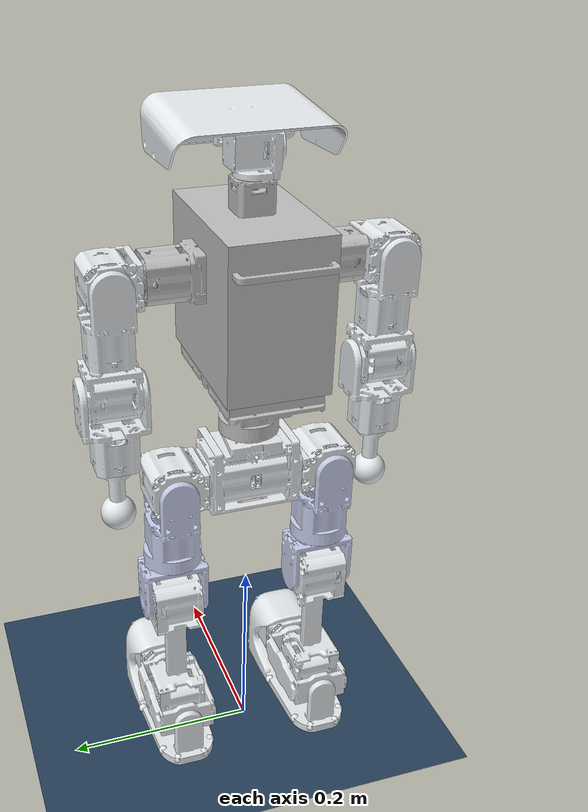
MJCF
<mujoco model="pi_plus_25dof_250820_ori">
  <compiler angle="radian" meshdir="../meshes/"/>
  <default>
    <default class="pi_motor">
      <joint damping="0.05" armature="0.01" frictionloss="0.2" />
    </default>

  </default>

  <asset>
    <mesh name="base_link" file="base_link.STL"/>
    <mesh name="waist_link" file="waist_link.STL"/>
    <mesh name="l_hip_pitch_link" file="l_hip_pitch_link.STL"/>
    <mesh name="l_hip_roll_link" file="l_hip_roll_link.STL"/>
    <mesh name="l_thigh_link" file="l_thigh_link.STL"/>
    <mesh name="l_calf_link" file="l_calf_link.STL"/>
    <mesh name="l_ankle_pitch_link" file="l_ankle_pitch_link.STL"/>
    <mesh name="l_ankle_roll_link" file="l_ankle_roll_link.STL"/>
    <mesh name="r_hip_pitch_link" file="r_hip_pitch_link.STL"/>
    <mesh name="r_hip_roll_link" file="r_hip_roll_link.STL"/>
    <mesh name="r_thigh_link" file="r_thigh_link.STL"/>
    <mesh name="r_calf_link" file="r_calf_link.STL"/>
    <mesh name="r_ankle_pitch_link" file="r_ankle_pitch_link.STL"/>
    <mesh name="r_ankle_roll_link" file="r_ankle_roll_link.STL"/>
    <mesh name="l_shoulder_pitch_link" file="l_shoulder_pitch_link.STL"/>
    <mesh name="l_shoulder_roll_link" file="l_shoulder_roll_link.STL"/>
    <mesh name="l_upper_arm_link" file="l_upper_arm_link.STL"/>
    <mesh name="l_elbow_link" file="l_elbow_link.STL"/>
    <mesh name="l_wrist_link" file="l_wrist_link.STL"/>
    <mesh name="r_shoulder_pitch_link" file="r_shoulder_pitch_link.STL"/>
    <mesh name="r_shoulder_roll_link" file="r_shoulder_roll_link.STL"/>
    <mesh name="r_upper_arm_link" file="r_upper_arm_link.STL"/>
    <mesh name="r_elbow_link" file="r_elbow_link.STL"/>
    <mesh name="r_wrist_link" file="r_wrist_link.STL"/>
    <mesh name="head_yaw_link" file="head_yaw_link.STL"/>
    <mesh name="head_pitch_link" file="head_pitch_link.STL"/>
  </asset>

  <worldbody>
    <body name="base_link" pos="0 0 0.40">
      <site name="imu" size="0.01" pos="-0.0 -0.0 0.0" />

      <inertial pos="0.0033918 0.000229773 0.140713" quat="0.999674 -0.00150691 0.0253958 -0.00204895" mass="2.69295" diaginertia="0.0240249 0.021457 0.00759371"/>
      <joint name="floating_base_joint" type="free" limited="false" actuatorfrclimited="false" class="pi_motor"/>
      <geom type="mesh" contype="0" conaffinity="0" group="1" density="0" rgba="0.75294 0.75294 0.75294 1" mesh="base_link"/>
      <geom size="0.0825 0.05 0.075" pos="0 0 0.13" type="box" rgba="0.75294 0.75294 0.75294 1"/>
      <geom pos="0 -0.00025 0.236" quat="1 0 0 0" type="mesh" contype="0" conaffinity="0" group="1" density="0" rgba="0.89804 0.91765 0.92941 1" mesh="head_yaw_link"/>
      <geom pos="0 -0.00025 0.236" quat="1 0 0 0" type="mesh" rgba="0.89804 0.91765 0.92941 1" mesh="head_yaw_link"/>
      <geom pos="0 0.00025 0.2615" quat="1 0 0 0" type="mesh" contype="0" conaffinity="0" group="1" density="0" rgba="0.89804 0.91765 0.92941 1" mesh="head_pitch_link"/>
      <geom pos="0 0.00025 0.2615" quat="1 0 0 0" type="mesh" rgba="0.89804 0.91765 0.92941 1" mesh="head_pitch_link"/>

      <body name="l_shoulder_pitch_link" pos="0 0.1069 0.1549">
        <inertial pos="0.0021508 0.0256369 -0.0002145" quat="0.599936 0.397957 -0.582743 0.376985" mass="0.258581" diaginertia="9.64158e-05 8.57416e-05 7.97426e-05"/>
        <joint name="l_shoulder_pitch_joint" pos="0 0 0" axis="0 1 0" range="-2.61 2.61" actuatorfrcrange="-9 9" class="pi_motor"/>
        <geom type="mesh" contype="0" conaffinity="0" group="1" density="0" rgba="0.89804 0.91765 0.92941 1" mesh="l_shoulder_pitch_link"/>
        <geom type="mesh" rgba="0.89804 0.91765 0.92941 1" mesh="l_shoulder_pitch_link"/>
        <body name="l_shoulder_roll_link" pos="0 0.029 0">
          <inertial pos="0.0002739 0.0001877 -0.0460977" quat="0.707699 0.00350528 -0.00201726 0.706503" mass="0.295598" diaginertia="0.00028311 0.0002252 0.00012949"/>
          <joint name="l_shoulder_roll_joint" pos="0 0 0" axis="1 0 0" range="-0.36 3.4" actuatorfrcrange="-9 9" class="pi_motor"/>
          <geom type="mesh" contype="0" conaffinity="0" group="1" density="0" rgba="0.89804 0.91765 0.92941 1" mesh="l_shoulder_roll_link"/>
          <geom type="mesh" rgba="0.89804 0.91765 0.92941 1" mesh="l_shoulder_roll_link"/>
          <body name="l_upper_arm_link" pos="0 0 -0.0814">
            <inertial pos="0.0002145 0.0020712 -0.0256369" quat="0.972893 0.231162 0.00276487 -0.00601627" mass="0.258581" diaginertia="9.65019e-05 8.61583e-05 7.94398e-05"/>
            <joint name="l_upper_arm_joint" pos="0 0 0" axis="0 0 1" range="-2.61 2.61" actuatorfrcrange="-9 9" class="pi_motor"/>
            <geom type="mesh" contype="0" conaffinity="0" group="1" density="0" rgba="0.89804 0.91765 0.92941 1" mesh="l_upper_arm_link"/>
            <geom type="mesh" rgba="0.89804 0.91765 0.92941 1" mesh="l_upper_arm_link"/>
            <body name="l_elbow_link" pos="0 0 -0.029">
              <inertial pos="-0.000118867 0.00024014 -0.0592622" quat="0.999999 -0.00142207 0.000365765 3.39521e-05" mass="0.380103" diaginertia="0.000549735 0.000491832 0.000137205"/>
              <joint name="l_elbow_joint" pos="0 0 0" axis="0 1 0" range="-1.91 1.91" actuatorfrcrange="-9 9" class="pi_motor"/>
              <geom type="mesh" contype="0" conaffinity="0" group="1" density="0" rgba="0.89804 0.91765 0.92941 1" mesh="l_elbow_link"/>
              <geom type="mesh" rgba="0.89804 0.91765 0.92941 1" mesh="l_elbow_link"/>
              <geom pos="0 0 -0.0814" quat="1 0 0 0" type="mesh" contype="0" conaffinity="0" group="1" density="0" rgba="0.89804 0.91765 0.92941 1" mesh="l_wrist_link"/>
              <geom pos="0 0 -0.0814" quat="1 0 0 0" type="mesh" rgba="0.89804 0.91765 0.92941 1" mesh="l_wrist_link"/>
            </body>
          </body>
        </body>
      </body>
      <body name="r_shoulder_pitch_link" pos="0 -0.1069 0.1549">
        <inertial pos="0.0021508 -0.0256369 0.0001349" quat="0.489689 0.506563 -0.489395 0.513899" mass="0.258581" diaginertia="9.64045e-05 8.48905e-05 3.16131e-05"/>
        <joint name="r_shoulder_pitch_joint" pos="0 0 0" axis="0 1 0" range="-2.61 2.61" actuatorfrcrange="-9 9" class="pi_motor"/>
        <geom type="mesh" contype="0" conaffinity="0" group="1" density="0" rgba="0.89804 0.91765 0.92941 1" mesh="r_shoulder_pitch_link"/>
        <geom type="mesh" rgba="0.89804 0.91765 0.92941 1" mesh="r_shoulder_pitch_link"/>
        <body name="r_shoulder_roll_link" pos="0 -0.029 0">
          <inertial pos="0.0002739 0.0001179 -0.0460977" quat="0.705878 0.00188564 -0.000416725 0.708331" mass="0.295598" diaginertia="0.000283102 0.0002252 0.000129498"/>
          <joint name="r_shoulder_roll_joint" pos="0 0 0" axis="1 0 0" range="-3.4 0.36" actuatorfrcrange="-9 9" class="pi_motor"/>
          <geom type="mesh" contype="0" conaffinity="0" group="1" density="0" rgba="0.89804 0.91765 0.92941 1" mesh="r_shoulder_roll_link"/>
          <geom type="mesh" rgba="0.89804 0.91765 0.92941 1" mesh="r_shoulder_roll_link"/>
          <body name="r_upper_arm_link" pos="0 0 -0.0814">
            <inertial pos="-0.0001349 0.0020712 -0.0256369" quat="0.972613 -0.231621 0.0163583 -0.0104347" mass="0.258581" diaginertia="9.65247e-05 8.61584e-05 7.9417e-05"/>
            <joint name="r_upper_arm_joint" pos="0 0 0" axis="0 0 1" range="-2.61 2.61" actuatorfrcrange="-9 9" class="pi_motor"/>
            <geom type="mesh" contype="0" conaffinity="0" group="1" density="0" rgba="0.89804 0.91765 0.92941 1" mesh="r_upper_arm_link"/>
            <geom type="mesh" rgba="0.89804 0.91765 0.92941 1" mesh="r_upper_arm_link"/>
            <body name="r_elbow_link" pos="0 0 -0.029">
              <inertial pos="0.000118867 -0.00024014 -0.0592622" quat="0.999997 0.00142145 -0.000367491 0.00172496" mass="0.380103" diaginertia="0.000549735 0.000491832 0.000137205"/>
              <joint name="r_elbow_joint" pos="0 0 0" axis="0 1 0" range="-1.91 1.91" actuatorfrcrange="-9 9" class="pi_motor"/>
              <geom type="mesh" contype="0" conaffinity="0" group="1" density="0" rgba="0.89804 0.91765 0.92941 1" mesh="r_elbow_link"/>
              <geom type="mesh" rgba="0.89804 0.91765 0.92941 1" mesh="r_elbow_link"/>
              <geom pos="0 0 -0.0814" type="mesh" contype="0" conaffinity="0" group="1" density="0" rgba="0.89804 0.91765 0.92941 1" mesh="r_wrist_link"/>
              <geom pos="0 0 -0.0814" type="mesh" rgba="0.89804 0.91765 0.92941 1" mesh="r_wrist_link"/>
            </body>
          </body>
        </body>
      </body>
      <body name="waist_link" pos="0 0 -0.0208">
        <inertial pos="-0.0002057 0 -0.0388001" quat="0.706991 0.706843 -0.0183512 0.0141014" mass="0.88635" diaginertia="0.0010566 0.00092352 0.000407677"/>
        <joint name="waist_joint" pos="0 0 0" axis="0 0 1" range="-1.57 1.57" actuatorfrcrange="-14.4 14.4" class="pi_motor"/>
        <geom type="mesh" contype="0" conaffinity="0" group="1" density="0" rgba="0.89804 0.91765 0.92941 1" mesh="waist_link"/>
        <geom type="mesh" rgba="0.89804 0.91765 0.92941 1" mesh="waist_link"/>
        <body name="l_hip_pitch_link" pos="0 0.0489 -0.0435">
          <inertial pos="0.0012172 0.0292722 0.0002663" quat="0.550776 0.447675 -0.561529 0.425344" mass="0.399388" diaginertia="0.000124732 0.000104589 9.76791e-05"/>
          <joint name="l_hip_pitch_joint" pos="0 0 0" axis="0 1 0" range="-3.13 2.95" actuatorfrcrange="-14.4 14.4" class="pi_motor"/>
          <geom type="mesh" contype="0" conaffinity="0" group="1" density="0" rgba="0.89804 0.91765 0.92941 1" mesh="l_hip_pitch_link"/>
          <geom type="mesh" rgba="0.89804 0.91765 0.92941 1" mesh="l_hip_pitch_link"/>
          <body name="l_hip_roll_link" pos="0 0.0326 0">
            <inertial pos="0.0007793 0.0001363 -0.06136" quat="0.704755 0.0299981 0.0282991 0.708251" mass="0.4863" diaginertia="0.000570404 0.000478234 0.000222462"/>
            <joint name="l_hip_roll_joint" pos="0 0 0" axis="1 0 0" range="-0.31 3.14" actuatorfrcrange="-14.4 14.4" class="pi_motor"/>
            <geom type="mesh" contype="0" conaffinity="0" group="1" density="0" rgba="0.79216 0.81961 0.93333 1" mesh="l_hip_roll_link"/>
            <geom type="mesh" rgba="0.79216 0.81961 0.93333 1" mesh="l_hip_roll_link"/>
            <body name="l_thigh_link" pos="-0.00035 0 -0.10249">
              <inertial pos="0 -0.0014288 -0.017897" quat="0.680525 0.732725 0 0" mass="0.10996" diaginertia="0.0001209 9.22997e-05 5.56003e-05"/>
              <joint name="l_thigh_joint" pos="0 0 0" axis="0 0 1" range="-2.88 2.88" actuatorfrcrange="-14.4 14.4" class="pi_motor"/>
              <geom type="mesh" contype="0" conaffinity="0" group="1" density="0" rgba="0.79216 0.81961 0.93333 1" mesh="l_thigh_link"/>
              <geom type="mesh" rgba="0.79216 0.81961 0.93333 1" mesh="l_thigh_link"/>
              <body name="l_calf_link" pos="0 0 -0.039912">
                <inertial pos="-1.36e-05 0.0027531 -0.07" quat="0.999998 0 0.00209978 0" mass="0.803183" diaginertia="0.00373206 0.0037196 0.000184037"/>
                <joint name="l_calf_joint" pos="0 0 0" axis="0 1 0" range="-2.49 2.49" actuatorfrcrange="-14.4 14.4" class="pi_motor"/>
                <geom type="mesh" contype="0" conaffinity="0" group="1" density="0" rgba="0.89804 0.91765 0.92941 1" mesh="l_calf_link"/>
                <geom type="mesh" rgba="0.89804 0.91765 0.92941 1" mesh="l_calf_link"/>
                <body name="l_ankle_pitch_link" pos="0 0 -0.14">
                  <inertial pos="0.0069349 -0.0009173 1.5304e-05" quat="-0.00519324 0.706854 0.00520229 0.707321" mass="0.15648" diaginertia="0.0002664 0.000183115 0.000115085"/>
                  <joint name="l_ankle_pitch_joint" pos="0 0 0" axis="0 1 0" range="-0.97 0.92" actuatorfrcrange="-14.4 14.4" class="pi_motor"/>
                  <geom type="mesh" contype="0" conaffinity="0" group="1" density="0" rgba="0.89804 0.91765 0.92941 1" mesh="l_ankle_pitch_link"/>
                  <geom type="mesh" rgba="0.89804 0.91765 0.92941 1" mesh="l_ankle_pitch_link"/>
                  <body name="l_ankle_roll_link" pos="0.051 0 0">
                    <inertial pos="0.0040054 0.0001778 -0.012947" quat="0.565106 0.424083 0.426071 0.565042" mass="0.615015" diaginertia="0.00139221 0.00128638 0.000370719"/>
                    <joint name="l_ankle_roll_joint" pos="0 0 0" axis="1 0 0" range="-0.78 0.78" actuatorfrcrange="-14.4 14.4" class="pi_motor"/>
                    <geom type="mesh" contype="0" conaffinity="0" group="1" density="0" rgba="0.89804 0.91765 0.92941 1" mesh="l_ankle_roll_link"/>
                    <geom size="0.005" pos="0.055 0 -0.043" rgba="0.89804 0.91765 0.92941 1"/>
                    <geom size="0.005" pos="0.052 0.03 -0.043" rgba="0.89804 0.91765 0.92941 1"/>
                    <geom size="0.005" pos="0.052 -0.03 -0.043" rgba="0.89804 0.91765 0.92941 1"/>
                    <geom size="0.005" pos="-0.02 -0.032 -0.043" rgba="0.89804 0.91765 0.92941 1"/>
                    <geom size="0.005" pos="-0.02 0.032 -0.043" rgba="0.89804 0.91765 0.92941 1"/>
                    <geom size="0.005" pos="-0.09 0.027 -0.043" rgba="0.89804 0.91765 0.92941 1"/>
                    <geom size="0.005" pos="-0.09 -0.027 -0.043" rgba="0.89804 0.91765 0.92941 1"/>
                    <geom size="0.005" pos="-0.107 -0.015 -0.043" rgba="0.89804 0.91765 0.92941 1"/>
                    <geom size="0.005" pos="-0.107 0.015 -0.043" rgba="0.89804 0.91765 0.92941 1"/>
                    <geom size="0.02 0.025 0.025" pos="0.035 0 0" type="box" rgba="0.89804 0.91765 0.92941 1"/>
                  </body>
                </body>
              </body>
            </body>
          </body>
        </body>
        <body name="r_hip_pitch_link" pos="0 -0.0494 -0.0435">
          <inertial pos="0.0013058 -0.0293131 0.0002663" quat="0.450847 0.546648 -0.454702 0.539591" mass="0.399388" diaginertia="0.000125904 0.000105756 9.78405e-05"/>
          <joint name="r_hip_pitch_joint" pos="0 0 0" axis="0 1 0" range="-3.13 2.95" actuatorfrcrange="-14.4 14.4"  class="pi_motor"/>
          <geom type="mesh" contype="0" conaffinity="0" group="1" density="0" rgba="0.89804 0.91765 0.92941 1" mesh="r_hip_pitch_link"/>
          <geom type="mesh" rgba="0.89804 0.91765 0.92941 1" mesh="r_hip_pitch_link"/>
          <body name="r_hip_roll_link" pos="0 -0.0321 0">
            <inertial pos="0.0008711 5.42e-05 -0.0613599" quat="0.704743 0.0284395 0.0293915 0.708282" mass="0.4863" diaginertia="0.000570703 0.000478203 0.000222794"/>
            <joint name="r_hip_roll_joint" pos="0 0 0" axis="1 0 0" range="-3.14 0.31" actuatorfrcrange="-14.4 14.4"  class="pi_motor"/>
            <geom type="mesh" contype="0" conaffinity="0" group="1" density="0" rgba="0.79216 0.81961 0.93333 1" mesh="r_hip_roll_link"/>
            <geom type="mesh" rgba="0.79216 0.81961 0.93333 1" mesh="r_hip_roll_link"/>
            <body name="r_thigh_link" pos="-0.00025 0 -0.10279">
              <inertial pos="0 0.0014288 -0.017897" quat="0.732725 0.680525 0 0" mass="0.10996" diaginertia="0.0001209 9.22997e-05 5.56003e-05"/>
              <joint name="r_thigh_joint" pos="0 0 0" axis="0 0 1" range="-2.88 2.88" actuatorfrcrange="-14.4 14.4"  class="pi_motor"/>
              <geom type="mesh" contype="0" conaffinity="0" group="1" density="0" rgba="0.79216 0.81961 0.93333 1" mesh="r_thigh_link"/>
              <geom type="mesh" rgba="0.79216 0.81961 0.93333 1" mesh="r_thigh_link"/>
              <body name="r_calf_link" pos="0 0 -0.039912">
                <inertial pos="-1.36e-05 -0.0027531 -0.07" quat="0.999998 0 -0.00209978 0" mass="0.803183" diaginertia="0.00373206 0.0037196 0.000184037"/>
                <joint name="r_calf_joint" pos="0 0 0" axis="0 1 0" range="-2.49 2.49" actuatorfrcrange="-14.4 14.4" class="pi_motor"/>
                <geom type="mesh" contype="0" conaffinity="0" group="1" density="0" rgba="0.89804 0.91765 0.92941 1" mesh="r_calf_link"/>
                <geom type="mesh" rgba="0.89804 0.91765 0.92941 1" mesh="r_calf_link"/>
                <body name="r_ankle_pitch_link" pos="0 0 -0.14">
                  <inertial pos="0.0069349 0.0059217 -1.5304e-05" quat="0.00520229 0.707321 -0.00519324 0.706854" mass="0.15648" diaginertia="0.0002664 0.000183115 0.000115085"/>
                  <joint name="r_ankle_pitch_joint" pos="0 0 0" axis="0 1 0" range="-0.97 0.92" actuatorfrcrange="-14.4 14.4" class="pi_motor"/>
                  <geom type="mesh" contype="0" conaffinity="0" group="1" density="0" rgba="0.89804 0.91765 0.92941 1" mesh="r_ankle_pitch_link"/>
                  <geom type="mesh" rgba="0.89804 0.91765 0.92941 1" mesh="r_ankle_pitch_link"/>
                  <body name="r_ankle_roll_link" pos="0.051 0.0050044 0">
                    <inertial pos="0.0040054 0.0001778 -0.012947" quat="0.565106 0.424083 0.426071 0.565042" mass="0.615015" diaginertia="0.00139221 0.00128638 0.000370719"/>
                    <joint name="r_ankle_roll_joint" pos="0 0 0" axis="1 0 0" range="-0.78 0.78" actuatorfrcrange="-14.4 14.4" class="pi_motor"/>
                    <geom type="mesh" contype="0" conaffinity="0" group="1" density="0" rgba="0.89804 0.91765 0.92941 1" mesh="r_ankle_roll_link"/>
                    <geom size="0.005" pos="0.055 0 -0.043" rgba="0.89804 0.91765 0.92941 1"/>
                    <geom size="0.005" pos="0.052 0.03 -0.043" rgba="0.89804 0.91765 0.92941 1"/>
                    <geom size="0.005" pos="0.052 -0.03 -0.043" rgba="0.89804 0.91765 0.92941 1"/>
                    <geom size="0.005" pos="-0.02 -0.032 -0.043" rgba="0.89804 0.91765 0.92941 1"/>
                    <geom size="0.005" pos="-0.02 0.032 -0.043" rgba="0.89804 0.91765 0.92941 1"/>
                    <geom size="0.005" pos="-0.09 0.027 -0.043" rgba="0.89804 0.91765 0.92941 1"/>
                    <geom size="0.005" pos="-0.09 -0.027 -0.043" rgba="0.89804 0.91765 0.92941 1"/>
                    <geom size="0.005" pos="-0.107 -0.015 -0.043" rgba="0.89804 0.91765 0.92941 1"/>
                    <geom size="0.005" pos="-0.107 0.015 -0.043" rgba="0.89804 0.91765 0.92941 1"/>
                    <geom size="0.02 0.025 0.025" pos="0.035 0 0" type="box" rgba="0.89804 0.91765 0.92941 1"/>
                  </body>
                </body>
              </body>
            </body>
          </body>
        </body>
      </body>
    </body>
  </worldbody>
   <actuator>
      <motor name="l_shoulder_pitch_joint" joint="l_shoulder_pitch_joint" gear="1" ctrllimited="true" ctrlrange="-20 20" />
      <motor name="l_shoulder_roll_joint" joint="l_shoulder_roll_joint" gear="1" ctrllimited="true" ctrlrange="-20 20" />
      <motor name="l_upper_arm_joint" joint="l_upper_arm_joint" gear="1" ctrllimited="true" ctrlrange="-20 20" />
      <motor name="l_elbow_joint" joint="l_elbow_joint" gear="1" ctrllimited="true" ctrlrange="-20 20" />
      <motor name="r_shoulder_pitch_joint" joint="r_shoulder_pitch_joint" gear="1" ctrllimited="true" ctrlrange="-20 20" />
      <motor name="r_shoulder_roll_joint" joint="r_shoulder_roll_joint" gear="1" ctrllimited="true" ctrlrange="-20 20" />
      <motor name="r_upper_arm_joint" joint="r_upper_arm_joint" gear="1" ctrllimited="true" ctrlrange="-20 20" />
      <motor name="r_elbow_joint" joint="r_elbow_joint" gear="1" ctrllimited="true" ctrlrange="-20 20" />
      <motor name="waist_joint" joint="waist_joint" gear="1" ctrllimited="true" ctrlrange="-20 20" />

      <motor name="l_hip_pitch_joint" joint="l_hip_pitch_joint" gear="1" ctrllimited="true" ctrlrange="-20 20" />
      <motor name="l_hip_roll_joint" joint="l_hip_roll_joint" gear="1" ctrllimited="true" ctrlrange="-20 20" />
      <motor name="l_thigh_joint" joint="l_thigh_joint" gear="1" ctrllimited="true" ctrlrange="-20 20" />
      <motor name="l_calf_joint" joint="l_calf_joint" gear="1" ctrllimited="true" ctrlrange="-20 20" />
      <motor name="l_ankle_pitch_joint" joint="l_ankle_pitch_joint" gear="1" ctrllimited="true" ctrlrange="-20 20" />
      <motor name="l_ankle_roll_joint" joint="l_ankle_roll_joint" gear="1" ctrllimited="true" ctrlrange="-20 20" />

      <motor name="r_hip_pitch_joint" joint="r_hip_pitch_joint" gear="1" ctrllimited="true" ctrlrange="-20 20" />
      <motor name="r_hip_roll_joint" joint="r_hip_roll_joint" gear="1" ctrllimited="true" ctrlrange="-20 20" />
      <motor name="r_thigh_joint" joint="r_thigh_joint" gear="1" ctrllimited="true" ctrlrange="-20 20" />
      <motor name="r_calf_joint" joint="r_calf_joint" gear="1" ctrllimited="true" ctrlrange="-20 20" />
      <motor name="r_ankle_pitch_joint" joint="r_ankle_pitch_joint" gear="1" ctrllimited="true" ctrlrange="-20 20" />
      <motor name="r_ankle_roll_joint" joint="r_ankle_roll_joint" gear="1" ctrllimited="true" ctrlrange="-20 20" />

   </actuator>
   <sensor>
   <!-- Position sensors -->
    <actuatorpos name="l_shoulder_pitch_joint_p" actuator="l_shoulder_pitch_joint" user="13"/>
    <actuatorpos name="l_shoulder_roll_joint_p" actuator="l_shoulder_roll_joint" user="13"/>
    <actuatorpos name="l_upper_arm_joint_p" actuator="l_upper_arm_joint" user="13"/>
    <actuatorpos name="l_elbow_joint_p" actuator="l_elbow_joint" user="13"/>
    <actuatorpos name="r_shoulder_pitch_joint_p" actuator="r_shoulder_pitch_joint" user="13"/>
    <actuatorpos name="r_shoulder_roll_joint_p" actuator="r_shoulder_roll_joint" user="13"/>
    <actuatorpos name="r_upper_arm_joint_p" actuator="r_upper_arm_joint" user="13"/>
    <actuatorpos name="r_elbow_joint_p" actuator="r_elbow_joint" user="13"/>
    <actuatorpos name="waist_joint_p" actuator="waist_joint" user="13"/>
    <actuatorpos name="l_hip_pitch_joint_p" actuator="l_hip_pitch_joint" user="13"/>
    <actuatorpos name="l_hip_roll_joint_p" actuator="l_hip_roll_joint" user="13"/>
    <actuatorpos name="l_thigh_joint_p" actuator="l_thigh_joint" user="13"/>
    <actuatorpos name="l_calf_joint_p" actuator="l_calf_joint" user="13"/>
    <actuatorpos name="l_ankle_pitch_joint_p" actuator="l_ankle_pitch_joint" user="13"/>
    <actuatorpos name="l_ankle_roll_joint_p" actuator="l_ankle_roll_joint" user="13"/>

    <actuatorpos name="r_hip_pitch_joint_p" actuator="r_hip_pitch_joint" user="13"/>
    <actuatorpos name="r_hip_roll_joint_p" actuator="r_hip_roll_joint" user="13"/>
    <actuatorpos name="r_thigh_joint_p" actuator="r_thigh_joint" user="13"/>
    <actuatorpos name="r_calf_joint_p" actuator="r_calf_joint" user="13"/>
    <actuatorpos name="r_ankle_pitch_joint_p" actuator="r_ankle_pitch_joint" user="13"/>
    <actuatorpos name="r_ankle_roll_joint_p" actuator="r_ankle_roll_joint" user="13"/>

    <!-- Velocity sensors -->
    <actuatorvel name="l_shoulder_pitch_joint_v" actuator="l_shoulder_pitch_joint" user="13" noise="1e-3"/>
    <actuatorvel name="l_shoulder_roll_joint_v" actuator="l_shoulder_roll_joint" user="13" noise="1e-3"/>
    <actuatorvel name="l_upper_arm_joint_v" actuator="l_upper_arm_joint" user="13" noise="1e-3"/>
    <actuatorvel name="l_elbow_joint_v" actuator="l_elbow_joint" user="13" noise="1e-3"/>
    <actuatorvel name="r_shoulder_pitch_joint_v" actuator="r_shoulder_pitch_joint" user="13" noise="1e-3"/>
    <actuatorvel name="r_shoulder_roll_joint_v" actuator="r_shoulder_roll_joint" user="13" noise="1e-3"/>
    <actuatorvel name="r_upper_arm_joint_v" actuator="r_upper_arm_joint" user="13" noise="1e-3"/>
    <actuatorvel name="r_elbow_joint_v" actuator="r_elbow_joint" user="13" noise="1e-3"/>
    <actuatorvel name="waist_joint_v" actuator="waist_joint" user="13" noise="1e-3"/>
    <actuatorvel name="l_hip_pitch_joint_v" actuator="l_hip_pitch_joint" user="13" noise="1e-3"/>
    <actuatorvel name="l_hip_roll_joint_v" actuator="l_hip_roll_joint" user="13" noise="1e-3"/>
    <actuatorvel name="l_thigh_joint_v" actuator="l_thigh_joint" user="13" noise="1e-3"/>
    <actuatorvel name="l_calf_joint_v" actuator="l_calf_joint" user="13" noise="1e-3"/>
    <actuatorvel name="l_ankle_pitch_joint_v" actuator="l_ankle_pitch_joint" user="13" noise="1e-3"/>
    <actuatorvel name="l_ankle_roll_joint_v" actuator="l_ankle_roll_joint" user="13" noise="1e-3"/>

    <actuatorvel name="r_hip_pitch_joint_v" actuator="r_hip_pitch_joint" user="13" noise="1e-3"/>
    <actuatorvel name="r_hip_roll_joint_v" actuator="r_hip_roll_joint" user="13" noise="1e-3"/>
    <actuatorvel name="r_thigh_joint_v" actuator="r_thigh_joint" user="13" noise="1e-3"/>
    <actuatorvel name="r_calf_joint_v" actuator="r_calf_joint" user="13" noise="1e-3"/>
    <actuatorvel name="r_ankle_pitch_joint_v" actuator="r_ankle_pitch_joint" user="13" noise="1e-3"/>
    <actuatorvel name="r_ankle_roll_joint_v" actuator="r_ankle_roll_joint" user="13" noise="1e-3"/>

    <!-- Force sensors -->
    <actuatorfrc name="l_shoulder_pitch_joint_f" actuator="l_shoulder_pitch_joint" user="13" noise="1e-3"/>
    <actuatorfrc name="l_shoulder_roll_joint_f" actuator="l_shoulder_roll_joint" user="13" noise="1e-3"/>
    <actuatorfrc name="l_upper_arm_joint_f" actuator="l_upper_arm_joint" user="13" noise="1e-3"/>
    <actuatorfrc name="l_elbow_joint_f" actuator="l_elbow_joint" user="13" noise="1e-3"/>
    <actuatorfrc name="r_shoulder_pitch_joint_f" actuator="r_shoulder_pitch_joint" user="13" noise="1e-3"/>
    <actuatorfrc name="r_shoulder_roll_joint_f" actuator="r_shoulder_roll_joint" user="13" noise="1e-3"/>
    <actuatorfrc name="r_upper_arm_joint_f" actuator="r_upper_arm_joint" user="13" noise="1e-3"/>
    <actuatorfrc name="r_elbow_joint_f" actuator="r_elbow_joint" user="13" noise="1e-3"/>
    <actuatorfrc name="waist_joint_f" actuator="waist_joint" user="13" noise="1e-3"/>
    <actuatorfrc name="l_hip_pitch_joint_f" actuator="l_hip_pitch_joint" user="13" noise="1e-3"/>
    <actuatorfrc name="l_hip_roll_joint_f" actuator="l_hip_roll_joint" user="13" noise="1e-3"/>
    <actuatorfrc name="l_thigh_joint_f" actuator="l_thigh_joint" user="13" noise="1e-3"/>
    <actuatorfrc name="l_calf_joint_f" actuator="l_calf_joint" user="13" noise="1e-3"/>
    <actuatorfrc name="l_ankle_pitch_joint_f" actuator="l_ankle_pitch_joint" user="13" noise="1e-3"/>
    <actuatorfrc name="l_ankle_roll_joint_f" actuator="l_ankle_roll_joint" user="13" noise="1e-3"/>

    <actuatorfrc name="r_hip_pitch_joint_f" actuator="r_hip_pitch_joint" user="13" noise="1e-3"/>
    <actuatorfrc name="r_hip_roll_joint_f" actuator="r_hip_roll_joint" user="13" noise="1e-3"/>
    <actuatorfrc name="r_thigh_joint_f" actuator="r_thigh_joint" user="13" noise="1e-3"/>
    <actuatorfrc name="r_calf_joint_f" actuator="r_calf_joint" user="13" noise="1e-3"/>
    <actuatorfrc name="r_ankle_pitch_joint_f" actuator="r_ankle_pitch_joint" user="13" noise="1e-3"/>
    <actuatorfrc name="r_ankle_roll_joint_f" actuator="r_ankle_roll_joint" user="13" noise="1e-3"/>

    <framequat name='orientation' objtype='site' noise='0.001' objname='imu'/>
    <framepos name='position' objtype='site' noise='0.001' objname='imu'/>
    <gyro name='angular-velocity' site='imu' noise='0.005' cutoff='34.9'/>
    <velocimeter name='linear-velocity' site='imu' noise='0.001' cutoff='30'/>
    <accelerometer name='linear-acceleration' site='imu' noise='0.005' cutoff='157'/>
    <magnetometer name='magnetometer' site='imu'/>

  </sensor>
    <!-- setup scene -->
  <statistic center="1.0 0.7 1.0" extent="0.8"/>
  <visual>
    <headlight diffuse="0.6 0.6 0.6" ambient="0.1 0.1 0.1" specular="0.9 0.9 0.9"/>
    <rgba haze="0.15 0.25 0.35 1"/>
    <global azimuth="-140" elevation="-20"/>
  </visual>
  <asset>
    <texture type="skybox" builtin="flat" rgb1="0 0 0" rgb2="0 0 0" width="512" height="3072"/>
    <texture type="2d" name="groundplane" builtin="checker" mark="edge" rgb1="0.2 0.3 0.4" rgb2="0.1 0.2 0.3" markrgb="0.8 0.8 0.8" width="300" height="300"/>
    <material name="groundplane" texture="groundplane" texuniform="true" texrepeat="5 5" reflectance="0.2"/>
  </asset>
  <worldbody>
    <light pos="1 0 3.5" dir="0 0 -1" directional="true"/>
    <geom contype="15" conaffinity="15"  name="floor" size="0 0 0.05" type="plane" material="groundplane"/>
  </worldbody>
</mujoco>
